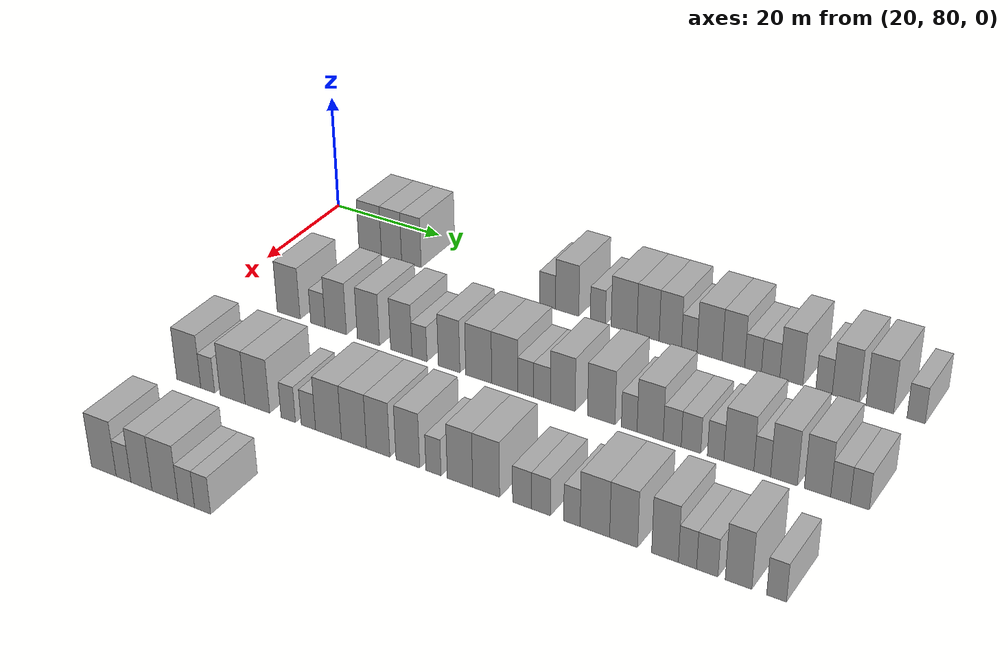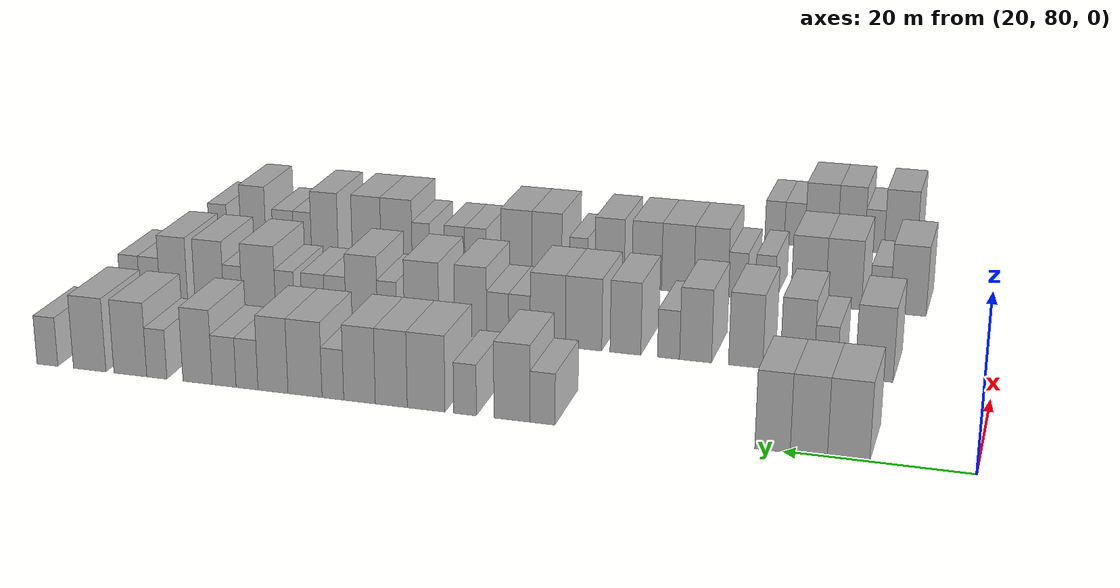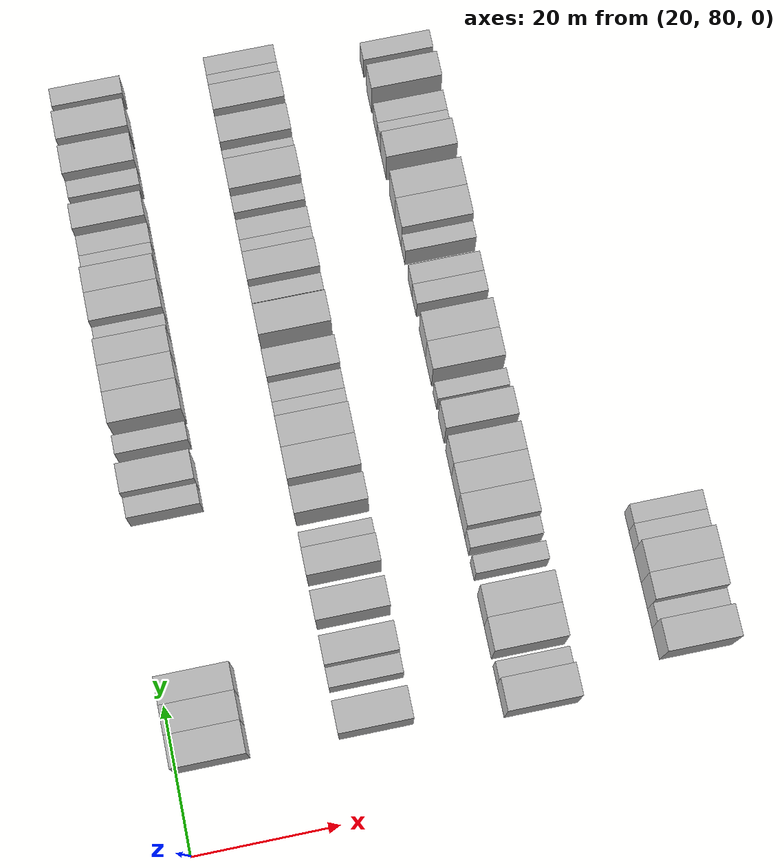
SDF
<sdf version="1.6">
 <world name="default">
  <model name="building_121">
   <static>1</static>
   <pose>25.0000 93.1823 0 0.000000 0.000000 0.000000</pose>
   <link name="link">
    <pose>0 0 4.50 0 0 0</pose>
    <collision name="collision"><geometry><box><size>10.0000 4.3922 9.0000</size></box></geometry></collision>
    <visual name="visual">
     <cast_shadows>0</cast_shadows>
     <geometry><box><size>10.0000 4.3922 9.0000</size></box></geometry>
     <material>
      <script>
       <uri>model://HANNAS_wall/materials/scripts</uri>
       <uri>model://HANNAS_wall/materials/textures</uri>
       <name>vrc/HANNAS_wall</name>
      </script>
     </material>
    </visual>
   </link>
  </model>
  <model name="building_122">
   <static>1</static>
   <pose>25.0000 97.3300 0 0.000000 0.000000 0.000000</pose>
   <link name="link">
    <pose>0 0 4.50 0 0 0</pose>
    <collision name="collision"><geometry><box><size>10.0000 3.9031 9.0000</size></box></geometry></collision>
    <visual name="visual">
     <cast_shadows>0</cast_shadows>
     <geometry><box><size>10.0000 3.9031 9.0000</size></box></geometry>
     <material>
      <script>
       <uri>model://HANNAS_wall/materials/scripts</uri>
       <uri>model://HANNAS_wall/materials/textures</uri>
       <name>vrc/HANNAS_wall</name>
      </script>
     </material>
    </visual>
   </link>
  </model>
  <model name="building_123">
   <static>1</static>
   <pose>25.0000 101.1537 0 0.000000 0.000000 0.000000</pose>
   <link name="link">
    <pose>0 0 4.50 0 0 0</pose>
    <collision name="collision"><geometry><box><size>10.0000 3.7442 9.0000</size></box></geometry></collision>
    <visual name="visual">
     <cast_shadows>0</cast_shadows>
     <geometry><box><size>10.0000 3.7442 9.0000</size></box></geometry>
     <material>
      <script>
       <uri>model://HANNAS_wall/materials/scripts</uri>
       <uri>model://HANNAS_wall/materials/textures</uri>
       <name>vrc/HANNAS_wall</name>
      </script>
     </material>
    </visual>
   </link>
  </model>
  <model name="building_124">
   <static>1</static>
   <pose>25.0000 126.2511 0 0.000000 0.000000 0.000000</pose>
   <link name="link">
    <pose>0 0 3.00 0 0 0</pose>
    <collision name="collision"><geometry><box><size>10.0000 2.8169 6.0000</size></box></geometry></collision>
    <visual name="visual">
     <cast_shadows>0</cast_shadows>
     <geometry><box><size>10.0000 2.8169 6.0000</size></box></geometry>
     <material>
      <script>
       <uri>model://HANNAS_wall/materials/scripts</uri>
       <uri>model://HANNAS_wall/materials/textures</uri>
       <name>vrc/HANNAS_wall</name>
      </script>
     </material>
    </visual>
   </link>
  </model>
  <model name="building_125">
   <static>1</static>
   <pose>25.0000 129.7025 0 0.000000 0.000000 0.000000</pose>
   <link name="link">
    <pose>0 0 4.50 0 0 0</pose>
    <collision name="collision"><geometry><box><size>10.0000 4.0858 9.0000</size></box></geometry></collision>
    <visual name="visual">
     <cast_shadows>0</cast_shadows>
     <geometry><box><size>10.0000 4.0858 9.0000</size></box></geometry>
     <material>
      <script>
       <uri>model://HANNAS_wall/materials/scripts</uri>
       <uri>model://HANNAS_wall/materials/textures</uri>
       <name>vrc/HANNAS_wall</name>
      </script>
     </material>
    </visual>
   </link>
  </model>
  <model name="building_126">
   <static>1</static>
   <pose>25.0000 135.0457 0 0.000000 0.000000 0.000000</pose>
   <link name="link">
    <pose>0 0 3.00 0 0 0</pose>
    <collision name="collision"><geometry><box><size>10.0000 2.6007 6.0000</size></box></geometry></collision>
    <visual name="visual">
     <cast_shadows>0</cast_shadows>
     <geometry><box><size>10.0000 2.6007 6.0000</size></box></geometry>
     <material>
      <script>
       <uri>model://HANNAS_wall/materials/scripts</uri>
       <uri>model://HANNAS_wall/materials/textures</uri>
       <name>vrc/HANNAS_wall</name>
      </script>
     </material>
    </visual>
   </link>
  </model>
  <model name="building_127">
   <static>1</static>
   <pose>25.0000 139.5342 0 0.000000 0.000000 0.000000</pose>
   <link name="link">
    <pose>0 0 4.50 0 0 0</pose>
    <collision name="collision"><geometry><box><size>10.0000 4.3762 9.0000</size></box></geometry></collision>
    <visual name="visual">
     <cast_shadows>0</cast_shadows>
     <geometry><box><size>10.0000 4.3762 9.0000</size></box></geometry>
     <material>
      <script>
       <uri>model://HANNAS_wall/materials/scripts</uri>
       <uri>model://HANNAS_wall/materials/textures</uri>
       <name>vrc/HANNAS_wall</name>
      </script>
     </material>
    </visual>
   </link>
  </model>
  <model name="building_128">
   <static>1</static>
   <pose>25.0000 143.5923 0 0.000000 0.000000 0.000000</pose>
   <link name="link">
    <pose>0 0 4.50 0 0 0</pose>
    <collision name="collision"><geometry><box><size>10.0000 3.7400 9.0000</size></box></geometry></collision>
    <visual name="visual">
     <cast_shadows>0</cast_shadows>
     <geometry><box><size>10.0000 3.7400 9.0000</size></box></geometry>
     <material>
      <script>
       <uri>model://HANNAS_wall/materials/scripts</uri>
       <uri>model://HANNAS_wall/materials/textures</uri>
       <name>vrc/HANNAS_wall</name>
      </script>
     </material>
    </visual>
   </link>
  </model>
  <model name="building_129">
   <static>1</static>
   <pose>25.0000 147.3271 0 0.000000 0.000000 0.000000</pose>
   <link name="link">
    <pose>0 0 4.50 0 0 0</pose>
    <collision name="collision"><geometry><box><size>10.0000 3.7297 9.0000</size></box></geometry></collision>
    <visual name="visual">
     <cast_shadows>0</cast_shadows>
     <geometry><box><size>10.0000 3.7297 9.0000</size></box></geometry>
     <material>
      <script>
       <uri>model://HANNAS_wall/materials/scripts</uri>
       <uri>model://HANNAS_wall/materials/textures</uri>
       <name>vrc/HANNAS_wall</name>
      </script>
     </material>
    </visual>
   </link>
  </model>
  <model name="building_130">
   <static>1</static>
   <pose>25.0000 150.4811 0 0.000000 0.000000 0.000000</pose>
   <link name="link">
    <pose>0 0 3.00 0 0 0</pose>
    <collision name="collision"><geometry><box><size>10.0000 2.5783 6.0000</size></box></geometry></collision>
    <visual name="visual">
     <cast_shadows>0</cast_shadows>
     <geometry><box><size>10.0000 2.5783 6.0000</size></box></geometry>
     <material>
      <script>
       <uri>model://HANNAS_wall/materials/scripts</uri>
       <uri>model://HANNAS_wall/materials/textures</uri>
       <name>vrc/HANNAS_wall</name>
      </script>
     </material>
    </visual>
   </link>
  </model>
  <model name="building_131">
   <static>1</static>
   <pose>25.0000 153.8093 0 0.000000 0.000000 0.000000</pose>
   <link name="link">
    <pose>0 0 4.50 0 0 0</pose>
    <collision name="collision"><geometry><box><size>10.0000 4.0782 9.0000</size></box></geometry></collision>
    <visual name="visual">
     <cast_shadows>0</cast_shadows>
     <geometry><box><size>10.0000 4.0782 9.0000</size></box></geometry>
     <material>
      <script>
       <uri>model://HANNAS_wall/materials/scripts</uri>
       <uri>model://HANNAS_wall/materials/textures</uri>
       <name>vrc/HANNAS_wall</name>
      </script>
     </material>
    </visual>
   </link>
  </model>
  <model name="building_132">
   <static>1</static>
   <pose>25.0000 157.6649 0 0.000000 0.000000 0.000000</pose>
   <link name="link">
    <pose>0 0 4.50 0 0 0</pose>
    <collision name="collision"><geometry><box><size>10.0000 3.6330 9.0000</size></box></geometry></collision>
    <visual name="visual">
     <cast_shadows>0</cast_shadows>
     <geometry><box><size>10.0000 3.6330 9.0000</size></box></geometry>
     <material>
      <script>
       <uri>model://HANNAS_wall/materials/scripts</uri>
       <uri>model://HANNAS_wall/materials/textures</uri>
       <name>vrc/HANNAS_wall</name>
      </script>
     </material>
    </visual>
   </link>
  </model>
  <model name="building_133">
   <static>1</static>
   <pose>25.0000 160.8158 0 0.000000 0.000000 0.000000</pose>
   <link name="link">
    <pose>0 0 3.00 0 0 0</pose>
    <collision name="collision"><geometry><box><size>10.0000 2.6688 6.0000</size></box></geometry></collision>
    <visual name="visual">
     <cast_shadows>0</cast_shadows>
     <geometry><box><size>10.0000 2.6688 6.0000</size></box></geometry>
     <material>
      <script>
       <uri>model://HANNAS_wall/materials/scripts</uri>
       <uri>model://HANNAS_wall/materials/textures</uri>
       <name>vrc/HANNAS_wall</name>
      </script>
     </material>
    </visual>
   </link>
  </model>
  <model name="building_134">
   <static>1</static>
   <pose>25.0000 163.6121 0 0.000000 0.000000 0.000000</pose>
   <link name="link">
    <pose>0 0 3.00 0 0 0</pose>
    <collision name="collision"><geometry><box><size>10.0000 2.9237 6.0000</size></box></geometry></collision>
    <visual name="visual">
     <cast_shadows>0</cast_shadows>
     <geometry><box><size>10.0000 2.9237 6.0000</size></box></geometry>
     <material>
      <script>
       <uri>model://HANNAS_wall/materials/scripts</uri>
       <uri>model://HANNAS_wall/materials/textures</uri>
       <name>vrc/HANNAS_wall</name>
      </script>
     </material>
    </visual>
   </link>
  </model>
  <model name="building_135">
   <static>1</static>
   <pose>25.0000 166.8798 0 0.000000 0.000000 0.000000</pose>
   <link name="link">
    <pose>0 0 4.50 0 0 0</pose>
    <collision name="collision"><geometry><box><size>10.0000 3.6118 9.0000</size></box></geometry></collision>
    <visual name="visual">
     <cast_shadows>0</cast_shadows>
     <geometry><box><size>10.0000 3.6118 9.0000</size></box></geometry>
     <material>
      <script>
       <uri>model://HANNAS_wall/materials/scripts</uri>
       <uri>model://HANNAS_wall/materials/textures</uri>
       <name>vrc/HANNAS_wall</name>
      </script>
     </material>
    </visual>
   </link>
  </model>
  <model name="building_136">
   <static>1</static>
   <pose>25.0000 171.9429 0 0.000000 0.000000 0.000000</pose>
   <link name="link">
    <pose>0 0 3.00 0 0 0</pose>
    <collision name="collision"><geometry><box><size>10.0000 2.5144 6.0000</size></box></geometry></collision>
    <visual name="visual">
     <cast_shadows>0</cast_shadows>
     <geometry><box><size>10.0000 2.5144 6.0000</size></box></geometry>
     <material>
      <script>
       <uri>model://HANNAS_wall/materials/scripts</uri>
       <uri>model://HANNAS_wall/materials/textures</uri>
       <name>vrc/HANNAS_wall</name>
      </script>
     </material>
    </visual>
   </link>
  </model>
  <model name="building_137">
   <static>1</static>
   <pose>25.0000 175.2676 0 0.000000 0.000000 0.000000</pose>
   <link name="link">
    <pose>0 0 4.50 0 0 0</pose>
    <collision name="collision"><geometry><box><size>10.0000 4.1349 9.0000</size></box></geometry></collision>
    <visual name="visual">
     <cast_shadows>0</cast_shadows>
     <geometry><box><size>10.0000 4.1349 9.0000</size></box></geometry>
     <material>
      <script>
       <uri>model://HANNAS_wall/materials/scripts</uri>
       <uri>model://HANNAS_wall/materials/textures</uri>
       <name>vrc/HANNAS_wall</name>
      </script>
     </material>
    </visual>
   </link>
  </model>
  <model name="building_138">
   <static>1</static>
   <pose>25.0000 180.4040 0 0.000000 0.000000 0.000000</pose>
   <link name="link">
    <pose>0 0 4.50 0 0 0</pose>
    <collision name="collision"><geometry><box><size>10.0000 4.1379 9.0000</size></box></geometry></collision>
    <visual name="visual">
     <cast_shadows>0</cast_shadows>
     <geometry><box><size>10.0000 4.1379 9.0000</size></box></geometry>
     <material>
      <script>
       <uri>model://HANNAS_wall/materials/scripts</uri>
       <uri>model://HANNAS_wall/materials/textures</uri>
       <name>vrc/HANNAS_wall</name>
      </script>
     </material>
    </visual>
   </link>
  </model>
  <model name="building_139">
   <static>1</static>
   <pose>25.0000 185.8107 0 0.000000 0.000000 0.000000</pose>
   <link name="link">
    <pose>0 0 3.00 0 0 0</pose>
    <collision name="collision"><geometry><box><size>10.0000 2.6757 6.0000</size></box></geometry></collision>
    <visual name="visual">
     <cast_shadows>0</cast_shadows>
     <geometry><box><size>10.0000 2.6757 6.0000</size></box></geometry>
     <material>
      <script>
       <uri>model://HANNAS_wall/materials/scripts</uri>
       <uri>model://HANNAS_wall/materials/textures</uri>
       <name>vrc/HANNAS_wall</name>
      </script>
     </material>
    </visual>
   </link>
  </model>
  <model name="building_305">
   <static>1</static>
   <pose>47.0000 93.1582 0 0.000000 0.000000 0.000000</pose>
   <link name="link">
    <pose>0 0 4.50 0 0 0</pose>
    <collision name="collision"><geometry><box><size>10.0000 4.3221 9.0000</size></box></geometry></collision>
    <visual name="visual">
     <cast_shadows>0</cast_shadows>
     <geometry><box><size>10.0000 4.3221 9.0000</size></box></geometry>
     <material>
      <script>
       <uri>model://HANNAS_wall/materials/scripts</uri>
       <uri>model://HANNAS_wall/materials/textures</uri>
       <name>vrc/HANNAS_wall</name>
      </script>
     </material>
    </visual>
   </link>
  </model>
  <model name="building_306">
   <static>1</static>
   <pose>47.0000 98.6654 0 0.000000 0.000000 0.000000</pose>
   <link name="link">
    <pose>0 0 3.00 0 0 0</pose>
    <collision name="collision"><geometry><box><size>10.0000 2.6923 6.0000</size></box></geometry></collision>
    <visual name="visual">
     <cast_shadows>0</cast_shadows>
     <geometry><box><size>10.0000 2.6923 6.0000</size></box></geometry>
     <material>
      <script>
       <uri>model://HANNAS_wall/materials/scripts</uri>
       <uri>model://HANNAS_wall/materials/textures</uri>
       <name>vrc/HANNAS_wall</name>
      </script>
     </material>
    </visual>
   </link>
  </model>
  <model name="building_307">
   <static>1</static>
   <pose>47.0000 101.9658 0 0.000000 0.000000 0.000000</pose>
   <link name="link">
    <pose>0 0 4.50 0 0 0</pose>
    <collision name="collision"><geometry><box><size>10.0000 3.9084 9.0000</size></box></geometry></collision>
    <visual name="visual">
     <cast_shadows>0</cast_shadows>
     <geometry><box><size>10.0000 3.9084 9.0000</size></box></geometry>
     <material>
      <script>
       <uri>model://HANNAS_wall/materials/scripts</uri>
       <uri>model://HANNAS_wall/materials/textures</uri>
       <name>vrc/HANNAS_wall</name>
      </script>
     </material>
    </visual>
   </link>
  </model>
  <model name="building_308">
   <static>1</static>
   <pose>47.0000 107.9237 0 0.000000 0.000000 0.000000</pose>
   <link name="link">
    <pose>0 0 4.50 0 0 0</pose>
    <collision name="collision"><geometry><box><size>10.0000 4.0075 9.0000</size></box></geometry></collision>
    <visual name="visual">
     <cast_shadows>0</cast_shadows>
     <geometry><box><size>10.0000 4.0075 9.0000</size></box></geometry>
     <material>
      <script>
       <uri>model://HANNAS_wall/materials/scripts</uri>
       <uri>model://HANNAS_wall/materials/textures</uri>
       <name>vrc/HANNAS_wall</name>
      </script>
     </material>
    </visual>
   </link>
  </model>
  <model name="building_309">
   <static>1</static>
   <pose>47.0000 113.8187 0 0.000000 0.000000 0.000000</pose>
   <link name="link">
    <pose>0 0 4.50 0 0 0</pose>
    <collision name="collision"><geometry><box><size>10.0000 3.7824 9.0000</size></box></geometry></collision>
    <visual name="visual">
     <cast_shadows>0</cast_shadows>
     <geometry><box><size>10.0000 3.7824 9.0000</size></box></geometry>
     <material>
      <script>
       <uri>model://HANNAS_wall/materials/scripts</uri>
       <uri>model://HANNAS_wall/materials/textures</uri>
       <name>vrc/HANNAS_wall</name>
      </script>
     </material>
    </visual>
   </link>
  </model>
  <model name="building_310">
   <static>1</static>
   <pose>47.0000 117.0295 0 0.000000 0.000000 0.000000</pose>
   <link name="link">
    <pose>0 0 3.00 0 0 0</pose>
    <collision name="collision"><geometry><box><size>10.0000 2.6392 6.0000</size></box></geometry></collision>
    <visual name="visual">
     <cast_shadows>0</cast_shadows>
     <geometry><box><size>10.0000 2.6392 6.0000</size></box></geometry>
     <material>
      <script>
       <uri>model://HANNAS_wall/materials/scripts</uri>
       <uri>model://HANNAS_wall/materials/textures</uri>
       <name>vrc/HANNAS_wall</name>
      </script>
     </material>
    </visual>
   </link>
  </model>
  <model name="building_311">
   <static>1</static>
   <pose>47.0000 122.2091 0 0.000000 0.000000 0.000000</pose>
   <link name="link">
    <pose>0 0 4.50 0 0 0</pose>
    <collision name="collision"><geometry><box><size>10.0000 3.7201 9.0000</size></box></geometry></collision>
    <visual name="visual">
     <cast_shadows>0</cast_shadows>
     <geometry><box><size>10.0000 3.7201 9.0000</size></box></geometry>
     <material>
      <script>
       <uri>model://HANNAS_wall/materials/scripts</uri>
       <uri>model://HANNAS_wall/materials/textures</uri>
       <name>vrc/HANNAS_wall</name>
      </script>
     </material>
    </visual>
   </link>
  </model>
  <model name="building_312">
   <static>1</static>
   <pose>47.0000 127.2841 0 0.000000 0.000000 0.000000</pose>
   <link name="link">
    <pose>0 0 4.50 0 0 0</pose>
    <collision name="collision"><geometry><box><size>10.0000 4.4299 9.0000</size></box></geometry></collision>
    <visual name="visual">
     <cast_shadows>0</cast_shadows>
     <geometry><box><size>10.0000 4.4299 9.0000</size></box></geometry>
     <material>
      <script>
       <uri>model://HANNAS_wall/materials/scripts</uri>
       <uri>model://HANNAS_wall/materials/textures</uri>
       <name>vrc/HANNAS_wall</name>
      </script>
     </material>
    </visual>
   </link>
  </model>
  <model name="building_313">
   <static>1</static>
   <pose>47.0000 131.6734 0 0.000000 0.000000 0.000000</pose>
   <link name="link">
    <pose>0 0 4.50 0 0 0</pose>
    <collision name="collision"><geometry><box><size>10.0000 4.3488 9.0000</size></box></geometry></collision>
    <visual name="visual">
     <cast_shadows>0</cast_shadows>
     <geometry><box><size>10.0000 4.3488 9.0000</size></box></geometry>
     <material>
      <script>
       <uri>model://HANNAS_wall/materials/scripts</uri>
       <uri>model://HANNAS_wall/materials/textures</uri>
       <name>vrc/HANNAS_wall</name>
      </script>
     </material>
    </visual>
   </link>
  </model>
  <model name="building_314">
   <static>1</static>
   <pose>47.0000 135.1822 0 0.000000 0.000000 0.000000</pose>
   <link name="link">
    <pose>0 0 3.00 0 0 0</pose>
    <collision name="collision"><geometry><box><size>10.0000 2.6687 6.0000</size></box></geometry></collision>
    <visual name="visual">
     <cast_shadows>0</cast_shadows>
     <geometry><box><size>10.0000 2.6687 6.0000</size></box></geometry>
     <material>
      <script>
       <uri>model://HANNAS_wall/materials/scripts</uri>
       <uri>model://HANNAS_wall/materials/textures</uri>
       <name>vrc/HANNAS_wall</name>
      </script>
     </material>
    </visual>
   </link>
  </model>
  <model name="building_315">
   <static>1</static>
   <pose>47.0000 137.8945 0 0.000000 0.000000 0.000000</pose>
   <link name="link">
    <pose>0 0 3.00 0 0 0</pose>
    <collision name="collision"><geometry><box><size>10.0000 2.7558 6.0000</size></box></geometry></collision>
    <visual name="visual">
     <cast_shadows>0</cast_shadows>
     <geometry><box><size>10.0000 2.7558 6.0000</size></box></geometry>
     <material>
      <script>
       <uri>model://HANNAS_wall/materials/scripts</uri>
       <uri>model://HANNAS_wall/materials/textures</uri>
       <name>vrc/HANNAS_wall</name>
      </script>
     </material>
    </visual>
   </link>
  </model>
  <model name="building_316">
   <static>1</static>
   <pose>47.0000 141.2739 0 0.000000 0.000000 0.000000</pose>
   <link name="link">
    <pose>0 0 4.50 0 0 0</pose>
    <collision name="collision"><geometry><box><size>10.0000 4.0030 9.0000</size></box></geometry></collision>
    <visual name="visual">
     <cast_shadows>0</cast_shadows>
     <geometry><box><size>10.0000 4.0030 9.0000</size></box></geometry>
     <material>
      <script>
       <uri>model://HANNAS_wall/materials/scripts</uri>
       <uri>model://HANNAS_wall/materials/textures</uri>
       <name>vrc/HANNAS_wall</name>
      </script>
     </material>
    </visual>
   </link>
  </model>
  <model name="building_317">
   <static>1</static>
   <pose>47.0000 147.4681 0 0.000000 0.000000 0.000000</pose>
   <link name="link">
    <pose>0 0 4.50 0 0 0</pose>
    <collision name="collision"><geometry><box><size>10.0000 4.3854 9.0000</size></box></geometry></collision>
    <visual name="visual">
     <cast_shadows>0</cast_shadows>
     <geometry><box><size>10.0000 4.3854 9.0000</size></box></geometry>
     <material>
      <script>
       <uri>model://HANNAS_wall/materials/scripts</uri>
       <uri>model://HANNAS_wall/materials/textures</uri>
       <name>vrc/HANNAS_wall</name>
      </script>
     </material>
    </visual>
   </link>
  </model>
  <model name="building_318">
   <static>1</static>
   <pose>47.0000 151.8883 0 0.000000 0.000000 0.000000</pose>
   <link name="link">
    <pose>0 0 3.00 0 0 0</pose>
    <collision name="collision"><geometry><box><size>10.0000 2.4551 6.0000</size></box></geometry></collision>
    <visual name="visual">
     <cast_shadows>0</cast_shadows>
     <geometry><box><size>10.0000 2.4551 6.0000</size></box></geometry>
     <material>
      <script>
       <uri>model://HANNAS_wall/materials/scripts</uri>
       <uri>model://HANNAS_wall/materials/textures</uri>
       <name>vrc/HANNAS_wall</name>
      </script>
     </material>
    </visual>
   </link>
  </model>
  <model name="building_319">
   <static>1</static>
   <pose>47.0000 155.1498 0 0.000000 0.000000 0.000000</pose>
   <link name="link">
    <pose>0 0 4.50 0 0 0</pose>
    <collision name="collision"><geometry><box><size>10.0000 4.0678 9.0000</size></box></geometry></collision>
    <visual name="visual">
     <cast_shadows>0</cast_shadows>
     <geometry><box><size>10.0000 4.0678 9.0000</size></box></geometry>
     <material>
      <script>
       <uri>model://HANNAS_wall/materials/scripts</uri>
       <uri>model://HANNAS_wall/materials/textures</uri>
       <name>vrc/HANNAS_wall</name>
      </script>
     </material>
    </visual>
   </link>
  </model>
  <model name="building_320">
   <static>1</static>
   <pose>47.0000 158.5693 0 0.000000 0.000000 0.000000</pose>
   <link name="link">
    <pose>0 0 3.00 0 0 0</pose>
    <collision name="collision"><geometry><box><size>10.0000 2.7711 6.0000</size></box></geometry></collision>
    <visual name="visual">
     <cast_shadows>0</cast_shadows>
     <geometry><box><size>10.0000 2.7711 6.0000</size></box></geometry>
     <material>
      <script>
       <uri>model://HANNAS_wall/materials/scripts</uri>
       <uri>model://HANNAS_wall/materials/textures</uri>
       <name>vrc/HANNAS_wall</name>
      </script>
     </material>
    </visual>
   </link>
  </model>
  <model name="building_321">
   <static>1</static>
   <pose>47.0000 161.4415 0 0.000000 0.000000 0.000000</pose>
   <link name="link">
    <pose>0 0 3.00 0 0 0</pose>
    <collision name="collision"><geometry><box><size>10.0000 2.9733 6.0000</size></box></geometry></collision>
    <visual name="visual">
     <cast_shadows>0</cast_shadows>
     <geometry><box><size>10.0000 2.9733 6.0000</size></box></geometry>
     <material>
      <script>
       <uri>model://HANNAS_wall/materials/scripts</uri>
       <uri>model://HANNAS_wall/materials/textures</uri>
       <name>vrc/HANNAS_wall</name>
      </script>
     </material>
    </visual>
   </link>
  </model>
  <model name="building_322">
   <static>1</static>
   <pose>47.0000 165.1710 0 0.000000 0.000000 0.000000</pose>
   <link name="link">
    <pose>0 0 3.00 0 0 0</pose>
    <collision name="collision"><geometry><box><size>10.0000 2.4856 6.0000</size></box></geometry></collision>
    <visual name="visual">
     <cast_shadows>0</cast_shadows>
     <geometry><box><size>10.0000 2.4856 6.0000</size></box></geometry>
     <material>
      <script>
       <uri>model://HANNAS_wall/materials/scripts</uri>
       <uri>model://HANNAS_wall/materials/textures</uri>
       <name>vrc/HANNAS_wall</name>
      </script>
     </material>
    </visual>
   </link>
  </model>
  <model name="building_323">
   <static>1</static>
   <pose>47.0000 168.6358 0 0.000000 0.000000 0.000000</pose>
   <link name="link">
    <pose>0 0 4.50 0 0 0</pose>
    <collision name="collision"><geometry><box><size>10.0000 4.4440 9.0000</size></box></geometry></collision>
    <visual name="visual">
     <cast_shadows>0</cast_shadows>
     <geometry><box><size>10.0000 4.4440 9.0000</size></box></geometry>
     <material>
      <script>
       <uri>model://HANNAS_wall/materials/scripts</uri>
       <uri>model://HANNAS_wall/materials/textures</uri>
       <name>vrc/HANNAS_wall</name>
      </script>
     </material>
    </visual>
   </link>
  </model>
  <model name="building_324">
   <static>1</static>
   <pose>47.0000 172.0806 0 0.000000 0.000000 0.000000</pose>
   <link name="link">
    <pose>0 0 3.00 0 0 0</pose>
    <collision name="collision"><geometry><box><size>10.0000 2.4456 6.0000</size></box></geometry></collision>
    <visual name="visual">
     <cast_shadows>0</cast_shadows>
     <geometry><box><size>10.0000 2.4456 6.0000</size></box></geometry>
     <material>
      <script>
       <uri>model://HANNAS_wall/materials/scripts</uri>
       <uri>model://HANNAS_wall/materials/textures</uri>
       <name>vrc/HANNAS_wall</name>
      </script>
     </material>
    </visual>
   </link>
  </model>
  <model name="building_325">
   <static>1</static>
   <pose>47.0000 175.2502 0 0.000000 0.000000 0.000000</pose>
   <link name="link">
    <pose>0 0 4.50 0 0 0</pose>
    <collision name="collision"><geometry><box><size>10.0000 3.8937 9.0000</size></box></geometry></collision>
    <visual name="visual">
     <cast_shadows>0</cast_shadows>
     <geometry><box><size>10.0000 3.8937 9.0000</size></box></geometry>
     <material>
      <script>
       <uri>model://HANNAS_wall/materials/scripts</uri>
       <uri>model://HANNAS_wall/materials/textures</uri>
       <name>vrc/HANNAS_wall</name>
      </script>
     </material>
    </visual>
   </link>
  </model>
  <model name="building_326">
   <static>1</static>
   <pose>47.0000 180.0775 0 0.000000 0.000000 0.000000</pose>
   <link name="link">
    <pose>0 0 4.50 0 0 0</pose>
    <collision name="collision"><geometry><box><size>10.0000 3.7610 9.0000</size></box></geometry></collision>
    <visual name="visual">
     <cast_shadows>0</cast_shadows>
     <geometry><box><size>10.0000 3.7610 9.0000</size></box></geometry>
     <material>
      <script>
       <uri>model://HANNAS_wall/materials/scripts</uri>
       <uri>model://HANNAS_wall/materials/textures</uri>
       <name>vrc/HANNAS_wall</name>
      </script>
     </material>
    </visual>
   </link>
  </model>
  <model name="building_327">
   <static>1</static>
   <pose>47.0000 183.3421 0 0.000000 0.000000 0.000000</pose>
   <link name="link">
    <pose>0 0 3.00 0 0 0</pose>
    <collision name="collision"><geometry><box><size>10.0000 2.7680 6.0000</size></box></geometry></collision>
    <visual name="visual">
     <cast_shadows>0</cast_shadows>
     <geometry><box><size>10.0000 2.7680 6.0000</size></box></geometry>
     <material>
      <script>
       <uri>model://HANNAS_wall/materials/scripts</uri>
       <uri>model://HANNAS_wall/materials/textures</uri>
       <name>vrc/HANNAS_wall</name>
      </script>
     </material>
    </visual>
   </link>
  </model>
  <model name="building_328">
   <static>1</static>
   <pose>47.0000 186.0578 0 0.000000 0.000000 0.000000</pose>
   <link name="link">
    <pose>0 0 3.00 0 0 0</pose>
    <collision name="collision"><geometry><box><size>10.0000 2.6634 6.0000</size></box></geometry></collision>
    <visual name="visual">
     <cast_shadows>0</cast_shadows>
     <geometry><box><size>10.0000 2.6634 6.0000</size></box></geometry>
     <material>
      <script>
       <uri>model://HANNAS_wall/materials/scripts</uri>
       <uri>model://HANNAS_wall/materials/textures</uri>
       <name>vrc/HANNAS_wall</name>
      </script>
     </material>
    </visual>
   </link>
  </model>
  <model name="building_498">
   <static>1</static>
   <pose>69.0000 91.5959 0 0.000000 0.000000 0.000000</pose>
   <link name="link">
    <pose>0 0 4.50 0 0 0</pose>
    <collision name="collision"><geometry><box><size>10.0000 4.4100 9.0000</size></box></geometry></collision>
    <visual name="visual">
     <cast_shadows>0</cast_shadows>
     <geometry><box><size>10.0000 4.4100 9.0000</size></box></geometry>
     <material>
      <script>
       <uri>model://HANNAS_wall/materials/scripts</uri>
       <uri>model://HANNAS_wall/materials/textures</uri>
       <name>vrc/HANNAS_wall</name>
      </script>
     </material>
    </visual>
   </link>
  </model>
  <model name="building_499">
   <static>1</static>
   <pose>69.0000 95.0624 0 0.000000 0.000000 0.000000</pose>
   <link name="link">
    <pose>0 0 3.00 0 0 0</pose>
    <collision name="collision"><geometry><box><size>10.0000 2.5231 6.0000</size></box></geometry></collision>
    <visual name="visual">
     <cast_shadows>0</cast_shadows>
     <geometry><box><size>10.0000 2.5231 6.0000</size></box></geometry>
     <material>
      <script>
       <uri>model://HANNAS_wall/materials/scripts</uri>
       <uri>model://HANNAS_wall/materials/textures</uri>
       <name>vrc/HANNAS_wall</name>
      </script>
     </material>
    </visual>
   </link>
  </model>
  <model name="building_500">
   <static>1</static>
   <pose>69.0000 99.5644 0 0.000000 0.000000 0.000000</pose>
   <link name="link">
    <pose>0 0 4.50 0 0 0</pose>
    <collision name="collision"><geometry><box><size>10.0000 4.4809 9.0000</size></box></geometry></collision>
    <visual name="visual">
     <cast_shadows>0</cast_shadows>
     <geometry><box><size>10.0000 4.4809 9.0000</size></box></geometry>
     <material>
      <script>
       <uri>model://HANNAS_wall/materials/scripts</uri>
       <uri>model://HANNAS_wall/materials/textures</uri>
       <name>vrc/HANNAS_wall</name>
      </script>
     </material>
    </visual>
   </link>
  </model>
  <model name="building_501">
   <static>1</static>
   <pose>69.0000 103.9727 0 0.000000 0.000000 0.000000</pose>
   <link name="link">
    <pose>0 0 4.50 0 0 0</pose>
    <collision name="collision"><geometry><box><size>10.0000 4.3356 9.0000</size></box></geometry></collision>
    <visual name="visual">
     <cast_shadows>0</cast_shadows>
     <geometry><box><size>10.0000 4.3356 9.0000</size></box></geometry>
     <material>
      <script>
       <uri>model://HANNAS_wall/materials/scripts</uri>
       <uri>model://HANNAS_wall/materials/textures</uri>
       <name>vrc/HANNAS_wall</name>
      </script>
     </material>
    </visual>
   </link>
  </model>
  <model name="building_502">
   <static>1</static>
   <pose>69.0000 109.3906 0 0.000000 0.000000 0.000000</pose>
   <link name="link">
    <pose>0 0 3.00 0 0 0</pose>
    <collision name="collision"><geometry><box><size>10.0000 2.5004 6.0000</size></box></geometry></collision>
    <visual name="visual">
     <cast_shadows>0</cast_shadows>
     <geometry><box><size>10.0000 2.5004 6.0000</size></box></geometry>
     <material>
      <script>
       <uri>model://HANNAS_wall/materials/scripts</uri>
       <uri>model://HANNAS_wall/materials/textures</uri>
       <name>vrc/HANNAS_wall</name>
      </script>
     </material>
    </visual>
   </link>
  </model>
  <model name="building_503">
   <static>1</static>
   <pose>69.0000 112.8725 0 0.000000 0.000000 0.000000</pose>
   <link name="link">
    <pose>0 0 3.00 0 0 0</pose>
    <collision name="collision"><geometry><box><size>10.0000 2.4634 6.0000</size></box></geometry></collision>
    <visual name="visual">
     <cast_shadows>0</cast_shadows>
     <geometry><box><size>10.0000 2.4634 6.0000</size></box></geometry>
     <material>
      <script>
       <uri>model://HANNAS_wall/materials/scripts</uri>
       <uri>model://HANNAS_wall/materials/textures</uri>
       <name>vrc/HANNAS_wall</name>
      </script>
     </material>
    </visual>
   </link>
  </model>
  <model name="building_504">
   <static>1</static>
   <pose>69.0000 116.2974 0 0.000000 0.000000 0.000000</pose>
   <link name="link">
    <pose>0 0 4.50 0 0 0</pose>
    <collision name="collision"><geometry><box><size>10.0000 4.3864 9.0000</size></box></geometry></collision>
    <visual name="visual">
     <cast_shadows>0</cast_shadows>
     <geometry><box><size>10.0000 4.3864 9.0000</size></box></geometry>
     <material>
      <script>
       <uri>model://HANNAS_wall/materials/scripts</uri>
       <uri>model://HANNAS_wall/materials/textures</uri>
       <name>vrc/HANNAS_wall</name>
      </script>
     </material>
    </visual>
   </link>
  </model>
  <model name="building_505">
   <static>1</static>
   <pose>69.0000 120.5874 0 0.000000 0.000000 0.000000</pose>
   <link name="link">
    <pose>0 0 4.50 0 0 0</pose>
    <collision name="collision"><geometry><box><size>10.0000 4.1936 9.0000</size></box></geometry></collision>
    <visual name="visual">
     <cast_shadows>0</cast_shadows>
     <geometry><box><size>10.0000 4.1936 9.0000</size></box></geometry>
     <material>
      <script>
       <uri>model://HANNAS_wall/materials/scripts</uri>
       <uri>model://HANNAS_wall/materials/textures</uri>
       <name>vrc/HANNAS_wall</name>
      </script>
     </material>
    </visual>
   </link>
  </model>
  <model name="building_506">
   <static>1</static>
   <pose>69.0000 124.6198 0 0.000000 0.000000 0.000000</pose>
   <link name="link">
    <pose>0 0 4.50 0 0 0</pose>
    <collision name="collision"><geometry><box><size>10.0000 3.8713 9.0000</size></box></geometry></collision>
    <visual name="visual">
     <cast_shadows>0</cast_shadows>
     <geometry><box><size>10.0000 3.8713 9.0000</size></box></geometry>
     <material>
      <script>
       <uri>model://HANNAS_wall/materials/scripts</uri>
       <uri>model://HANNAS_wall/materials/textures</uri>
       <name>vrc/HANNAS_wall</name>
      </script>
     </material>
    </visual>
   </link>
  </model>
  <model name="building_507">
   <static>1</static>
   <pose>69.0000 129.4871 0 0.000000 0.000000 0.000000</pose>
   <link name="link">
    <pose>0 0 4.50 0 0 0</pose>
    <collision name="collision"><geometry><box><size>10.0000 3.8633 9.0000</size></box></geometry></collision>
    <visual name="visual">
     <cast_shadows>0</cast_shadows>
     <geometry><box><size>10.0000 3.8633 9.0000</size></box></geometry>
     <material>
      <script>
       <uri>model://HANNAS_wall/materials/scripts</uri>
       <uri>model://HANNAS_wall/materials/textures</uri>
       <name>vrc/HANNAS_wall</name>
      </script>
     </material>
    </visual>
   </link>
  </model>
  <model name="building_508">
   <static>1</static>
   <pose>69.0000 133.6254 0 0.000000 0.000000 0.000000</pose>
   <link name="link">
    <pose>0 0 3.00 0 0 0</pose>
    <collision name="collision"><geometry><box><size>10.0000 2.4132 6.0000</size></box></geometry></collision>
    <visual name="visual">
     <cast_shadows>0</cast_shadows>
     <geometry><box><size>10.0000 2.4132 6.0000</size></box></geometry>
     <material>
      <script>
       <uri>model://HANNAS_wall/materials/scripts</uri>
       <uri>model://HANNAS_wall/materials/textures</uri>
       <name>vrc/HANNAS_wall</name>
      </script>
     </material>
    </visual>
   </link>
  </model>
  <model name="building_509">
   <static>1</static>
   <pose>69.0000 137.8310 0 0.000000 0.000000 0.000000</pose>
   <link name="link">
    <pose>0 0 4.50 0 0 0</pose>
    <collision name="collision"><geometry><box><size>10.0000 3.9982 9.0000</size></box></geometry></collision>
    <visual name="visual">
     <cast_shadows>0</cast_shadows>
     <geometry><box><size>10.0000 3.9982 9.0000</size></box></geometry>
     <material>
      <script>
       <uri>model://HANNAS_wall/materials/scripts</uri>
       <uri>model://HANNAS_wall/materials/textures</uri>
       <name>vrc/HANNAS_wall</name>
      </script>
     </material>
    </visual>
   </link>
  </model>
  <model name="building_510">
   <static>1</static>
   <pose>69.0000 141.9258 0 0.000000 0.000000 0.000000</pose>
   <link name="link">
    <pose>0 0 4.50 0 0 0</pose>
    <collision name="collision"><geometry><box><size>10.0000 4.1914 9.0000</size></box></geometry></collision>
    <visual name="visual">
     <cast_shadows>0</cast_shadows>
     <geometry><box><size>10.0000 4.1914 9.0000</size></box></geometry>
     <material>
      <script>
       <uri>model://HANNAS_wall/materials/scripts</uri>
       <uri>model://HANNAS_wall/materials/textures</uri>
       <name>vrc/HANNAS_wall</name>
      </script>
     </material>
    </visual>
   </link>
  </model>
  <model name="building_511">
   <static>1</static>
   <pose>69.0000 147.4771 0 0.000000 0.000000 0.000000</pose>
   <link name="link">
    <pose>0 0 3.00 0 0 0</pose>
    <collision name="collision"><geometry><box><size>10.0000 2.9110 6.0000</size></box></geometry></collision>
    <visual name="visual">
     <cast_shadows>0</cast_shadows>
     <geometry><box><size>10.0000 2.9110 6.0000</size></box></geometry>
     <material>
      <script>
       <uri>model://HANNAS_wall/materials/scripts</uri>
       <uri>model://HANNAS_wall/materials/textures</uri>
       <name>vrc/HANNAS_wall</name>
      </script>
     </material>
    </visual>
   </link>
  </model>
  <model name="building_512">
   <static>1</static>
   <pose>69.0000 150.3437 0 0.000000 0.000000 0.000000</pose>
   <link name="link">
    <pose>0 0 3.00 0 0 0</pose>
    <collision name="collision"><geometry><box><size>10.0000 2.8223 6.0000</size></box></geometry></collision>
    <visual name="visual">
     <cast_shadows>0</cast_shadows>
     <geometry><box><size>10.0000 2.8223 6.0000</size></box></geometry>
     <material>
      <script>
       <uri>model://HANNAS_wall/materials/scripts</uri>
       <uri>model://HANNAS_wall/materials/textures</uri>
       <name>vrc/HANNAS_wall</name>
      </script>
     </material>
    </visual>
   </link>
  </model>
  <model name="building_513">
   <static>1</static>
   <pose>69.0000 154.9745 0 0.000000 0.000000 0.000000</pose>
   <link name="link">
    <pose>0 0 3.00 0 0 0</pose>
    <collision name="collision"><geometry><box><size>10.0000 2.4394 6.0000</size></box></geometry></collision>
    <visual name="visual">
     <cast_shadows>0</cast_shadows>
     <geometry><box><size>10.0000 2.4394 6.0000</size></box></geometry>
     <material>
      <script>
       <uri>model://HANNAS_wall/materials/scripts</uri>
       <uri>model://HANNAS_wall/materials/textures</uri>
       <name>vrc/HANNAS_wall</name>
      </script>
     </material>
    </visual>
   </link>
  </model>
  <model name="building_514">
   <static>1</static>
   <pose>69.0000 158.3569 0 0.000000 0.000000 0.000000</pose>
   <link name="link">
    <pose>0 0 4.50 0 0 0</pose>
    <collision name="collision"><geometry><box><size>10.0000 4.3254 9.0000</size></box></geometry></collision>
    <visual name="visual">
     <cast_shadows>0</cast_shadows>
     <geometry><box><size>10.0000 4.3254 9.0000</size></box></geometry>
     <material>
      <script>
       <uri>model://HANNAS_wall/materials/scripts</uri>
       <uri>model://HANNAS_wall/materials/textures</uri>
       <name>vrc/HANNAS_wall</name>
      </script>
     </material>
    </visual>
   </link>
  </model>
  <model name="building_515">
   <static>1</static>
   <pose>69.0000 162.5420 0 0.000000 0.000000 0.000000</pose>
   <link name="link">
    <pose>0 0 4.50 0 0 0</pose>
    <collision name="collision"><geometry><box><size>10.0000 4.0447 9.0000</size></box></geometry></collision>
    <visual name="visual">
     <cast_shadows>0</cast_shadows>
     <geometry><box><size>10.0000 4.0447 9.0000</size></box></geometry>
     <material>
      <script>
       <uri>model://HANNAS_wall/materials/scripts</uri>
       <uri>model://HANNAS_wall/materials/textures</uri>
       <name>vrc/HANNAS_wall</name>
      </script>
     </material>
    </visual>
   </link>
  </model>
  <model name="building_516">
   <static>1</static>
   <pose>69.0000 168.4609 0 0.000000 0.000000 0.000000</pose>
   <link name="link">
    <pose>0 0 4.50 0 0 0</pose>
    <collision name="collision"><geometry><box><size>10.0000 3.7931 9.0000</size></box></geometry></collision>
    <visual name="visual">
     <cast_shadows>0</cast_shadows>
     <geometry><box><size>10.0000 3.7931 9.0000</size></box></geometry>
     <material>
      <script>
       <uri>model://HANNAS_wall/materials/scripts</uri>
       <uri>model://HANNAS_wall/materials/textures</uri>
       <name>vrc/HANNAS_wall</name>
      </script>
     </material>
    </visual>
   </link>
  </model>
  <model name="building_517">
   <static>1</static>
   <pose>69.0000 171.6311 0 0.000000 0.000000 0.000000</pose>
   <link name="link">
    <pose>0 0 3.00 0 0 0</pose>
    <collision name="collision"><geometry><box><size>10.0000 2.5473 6.0000</size></box></geometry></collision>
    <visual name="visual">
     <cast_shadows>0</cast_shadows>
     <geometry><box><size>10.0000 2.5473 6.0000</size></box></geometry>
     <material>
      <script>
       <uri>model://HANNAS_wall/materials/scripts</uri>
       <uri>model://HANNAS_wall/materials/textures</uri>
       <name>vrc/HANNAS_wall</name>
      </script>
     </material>
    </visual>
   </link>
  </model>
  <model name="building_518">
   <static>1</static>
   <pose>69.0000 174.3835 0 0.000000 0.000000 0.000000</pose>
   <link name="link">
    <pose>0 0 3.00 0 0 0</pose>
    <collision name="collision"><geometry><box><size>10.0000 2.9573 6.0000</size></box></geometry></collision>
    <visual name="visual">
     <cast_shadows>0</cast_shadows>
     <geometry><box><size>10.0000 2.9573 6.0000</size></box></geometry>
     <material>
      <script>
       <uri>model://HANNAS_wall/materials/scripts</uri>
       <uri>model://HANNAS_wall/materials/textures</uri>
       <name>vrc/HANNAS_wall</name>
      </script>
     </material>
    </visual>
   </link>
  </model>
  <model name="building_519">
   <static>1</static>
   <pose>69.0000 178.6733 0 0.000000 0.000000 0.000000</pose>
   <link name="link">
    <pose>0 0 4.50 0 0 0</pose>
    <collision name="collision"><geometry><box><size>10.0000 3.6224 9.0000</size></box></geometry></collision>
    <visual name="visual">
     <cast_shadows>0</cast_shadows>
     <geometry><box><size>10.0000 3.6224 9.0000</size></box></geometry>
     <material>
      <script>
       <uri>model://HANNAS_wall/materials/scripts</uri>
       <uri>model://HANNAS_wall/materials/textures</uri>
       <name>vrc/HANNAS_wall</name>
      </script>
     </material>
    </visual>
   </link>
  </model>
  <model name="building_520">
   <static>1</static>
   <pose>69.0000 183.8120 0 0.000000 0.000000 0.000000</pose>
   <link name="link">
    <pose>0 0 3.00 0 0 0</pose>
    <collision name="collision"><geometry><box><size>10.0000 2.6550 6.0000</size></box></geometry></collision>
    <visual name="visual">
     <cast_shadows>0</cast_shadows>
     <geometry><box><size>10.0000 2.6550 6.0000</size></box></geometry>
     <material>
      <script>
       <uri>model://HANNAS_wall/materials/scripts</uri>
       <uri>model://HANNAS_wall/materials/textures</uri>
       <name>vrc/HANNAS_wall</name>
      </script>
     </material>
    </visual>
   </link>
  </model>
  <model name="building_692">
   <static>1</static>
   <pose>91.0000 94.8921 0 0.000000 0.000000 0.000000</pose>
   <link name="link">
    <pose>0 0 4.50 0 0 0</pose>
    <collision name="collision"><geometry><box><size>10.0000 4.3422 9.0000</size></box></geometry></collision>
    <visual name="visual">
     <cast_shadows>0</cast_shadows>
     <geometry><box><size>10.0000 4.3422 9.0000</size></box></geometry>
     <material>
      <script>
       <uri>model://HANNAS_wall/materials/scripts</uri>
       <uri>model://HANNAS_wall/materials/textures</uri>
       <name>vrc/HANNAS_wall</name>
      </script>
     </material>
    </visual>
   </link>
  </model>
  <model name="building_693">
   <static>1</static>
   <pose>91.0000 98.3551 0 0.000000 0.000000 0.000000</pose>
   <link name="link">
    <pose>0 0 3.00 0 0 0</pose>
    <collision name="collision"><geometry><box><size>10.0000 2.5839 6.0000</size></box></geometry></collision>
    <visual name="visual">
     <cast_shadows>0</cast_shadows>
     <geometry><box><size>10.0000 2.5839 6.0000</size></box></geometry>
     <material>
      <script>
       <uri>model://HANNAS_wall/materials/scripts</uri>
       <uri>model://HANNAS_wall/materials/textures</uri>
       <name>vrc/HANNAS_wall</name>
      </script>
     </material>
    </visual>
   </link>
  </model>
  <model name="building_694">
   <static>1</static>
   <pose>91.0000 101.4660 0 0.000000 0.000000 0.000000</pose>
   <link name="link">
    <pose>0 0 4.50 0 0 0</pose>
    <collision name="collision"><geometry><box><size>10.0000 3.6379 9.0000</size></box></geometry></collision>
    <visual name="visual">
     <cast_shadows>0</cast_shadows>
     <geometry><box><size>10.0000 3.6379 9.0000</size></box></geometry>
     <material>
      <script>
       <uri>model://HANNAS_wall/materials/scripts</uri>
       <uri>model://HANNAS_wall/materials/textures</uri>
       <name>vrc/HANNAS_wall</name>
      </script>
     </material>
    </visual>
   </link>
  </model>
  <model name="building_695">
   <static>1</static>
   <pose>91.0000 105.4827 0 0.000000 0.000000 0.000000</pose>
   <link name="link">
    <pose>0 0 4.50 0 0 0</pose>
    <collision name="collision"><geometry><box><size>10.0000 4.3954 9.0000</size></box></geometry></collision>
    <visual name="visual">
     <cast_shadows>0</cast_shadows>
     <geometry><box><size>10.0000 4.3954 9.0000</size></box></geometry>
     <material>
      <script>
       <uri>model://HANNAS_wall/materials/scripts</uri>
       <uri>model://HANNAS_wall/materials/textures</uri>
       <name>vrc/HANNAS_wall</name>
      </script>
     </material>
    </visual>
   </link>
  </model>
  <model name="building_696">
   <static>1</static>
   <pose>91.0000 109.0773 0 0.000000 0.000000 0.000000</pose>
   <link name="link">
    <pose>0 0 3.00 0 0 0</pose>
    <collision name="collision"><geometry><box><size>10.0000 2.7939 6.0000</size></box></geometry></collision>
    <visual name="visual">
     <cast_shadows>0</cast_shadows>
     <geometry><box><size>10.0000 2.7939 6.0000</size></box></geometry>
     <material>
      <script>
       <uri>model://HANNAS_wall/materials/scripts</uri>
       <uri>model://HANNAS_wall/materials/textures</uri>
       <name>vrc/HANNAS_wall</name>
      </script>
     </material>
    </visual>
   </link>
  </model>
  <model name="building_697">
   <static>1</static>
   <pose>91.0000 111.8089 0 0.000000 0.000000 0.000000</pose>
   <link name="link">
    <pose>0 0 3.00 0 0 0</pose>
    <collision name="collision"><geometry><box><size>10.0000 2.6691 6.0000</size></box></geometry></collision>
    <visual name="visual">
     <cast_shadows>0</cast_shadows>
     <geometry><box><size>10.0000 2.6691 6.0000</size></box></geometry>
     <material>
      <script>
       <uri>model://HANNAS_wall/materials/scripts</uri>
       <uri>model://HANNAS_wall/materials/textures</uri>
       <name>vrc/HANNAS_wall</name>
      </script>
     </material>
    </visual>
   </link>
  </model>
 </world>
</sdf>
